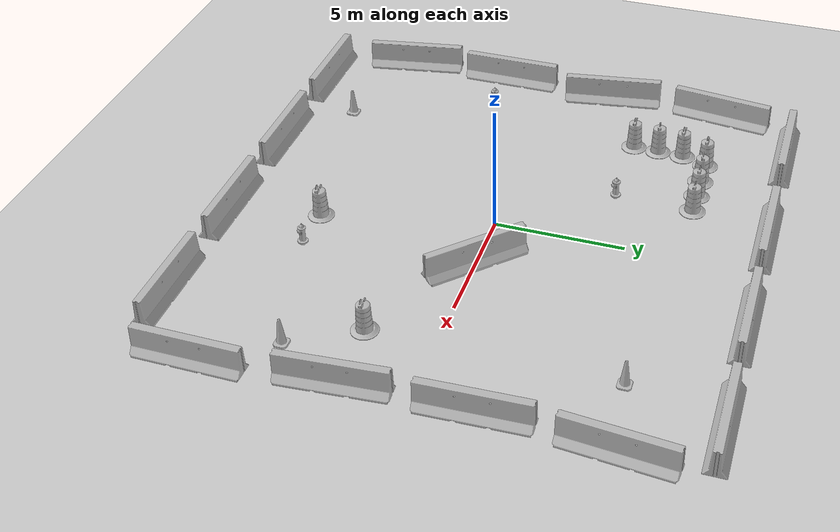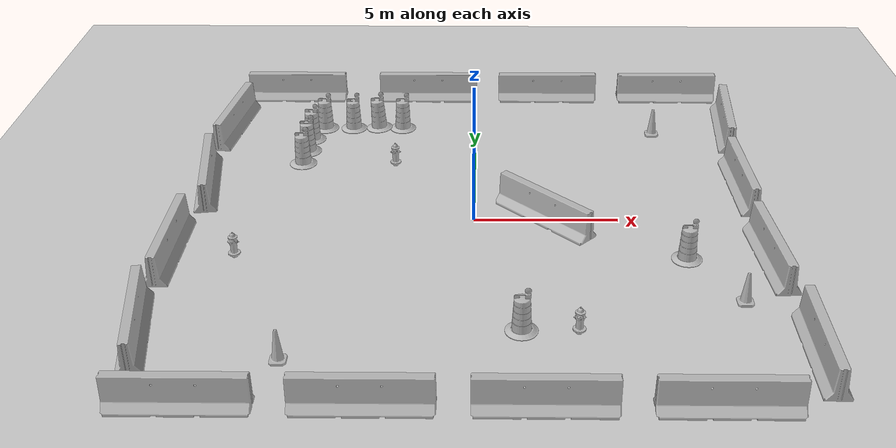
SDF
<sdf version="1.6">
 <world name="default">
  <light name="sun" type="directional">
   <pose>0 0 10 0 -0 0</pose>
   <diffuse>0.8 0.8 0.8 1</diffuse>
   <specular>0.2 0.2 0.2 1</specular>
   <attenuation>
    <range>1000</range>
    <constant>0.9</constant>
    <linear>0.01</linear>
    <quadratic>0.001</quadratic>
   </attenuation>
   <direction>-0.5 0.1 -0.9</direction>
  </light>
  <model name="ground_plane">
   <static>1</static>
   <link name="link">
    <collision name="collision">
     <geometry><plane><normal>0 0 1</normal><size>100 100</size></plane></geometry>
     <surface><friction><ode><mu>100</mu><mu2>50</mu2></ode></friction></surface>
    </collision>
    <visual name="visual">
     <cast_shadows>0</cast_shadows>
     <geometry><plane><normal>0 0 1</normal><size>100 100</size></plane></geometry>
     <material>
      <script><uri>file://media/materials/scripts/gazebo.material</uri><name>Gazebo/Grey</name></script>
     </material>
    </visual>
    <velocity_decay><linear>0</linear><angular>0</angular></velocity_decay>
   </link>
  </model>
  <physics name="default_physics" default="0" type="ode">
   <max_step_size>0.01</max_step_size>
   <real_time_factor>1</real_time_factor>
   <real_time_update_rate>100</real_time_update_rate>
  </physics>
  <scene><ambient>1 1 1 1</ambient><background>1 1 1 1</background><shadows>0</shadows></scene>
  <model name="jersey_barrier">
   <static>1</static>
   <link name="link">
    <visual name="visual">
     <geometry><mesh><uri>model://jersey_barrier/meshes/jersey_barrier.dae</uri></mesh></geometry>
    </visual>
    <collision name="upright">
     <pose>0 0 0.5715 0 -0 0</pose>
     <geometry><box><size>4.06542 0.3063 1.143</size></box></geometry>
    </collision>
    <collision name="base">
     <pose>0 0 0.032258 0 -0 0</pose>
     <geometry><box><size>4.06542 0.8107 0.064516</size></box></geometry>
    </collision>
    <collision name="base2">
     <pose>0 0 0.1 0 -0 0</pose>
     <geometry><box><size>4.06542 0.65 0.1</size></box></geometry>
    </collision>
    <collision name="base3">
     <pose>0 0 0.2 0 -0 0</pose>
     <geometry><box><size>4.06542 0.5 0.1</size></box></geometry>
    </collision>
    <collision name="left-angle">
     <pose>0 -0.224 0.2401 0.9 -0 0</pose>
     <geometry><box><size>4.06542 0.5 0.064516</size></box></geometry>
    </collision>
    <collision name="right-angle">
     <pose>0 0.224 0.2401 -0.9 0 0</pose>
     <geometry><box><size>4.06542 0.5 0.064516</size></box></geometry>
    </collision>
    <velocity_decay><linear>0</linear><angular>0</angular></velocity_decay>
   </link>
   <pose>-8 -10 0 0 -0 0</pose>
  </model>
  <model name="jersey_barrier_0">
   <static>1</static>
   <link name="link">
    <visual name="visual">
     <geometry><mesh><uri>model://jersey_barrier/meshes/jersey_barrier.dae</uri></mesh></geometry>
    </visual>
    <collision name="upright">
     <pose>0 0 0.5715 0 -0 0</pose>
     <geometry><box><size>4.06542 0.3063 1.143</size></box></geometry>
    </collision>
    <collision name="base">
     <pose>0 0 0.032258 0 -0 0</pose>
     <geometry><box><size>4.06542 0.8107 0.064516</size></box></geometry>
    </collision>
    <collision name="base2">
     <pose>0 0 0.1 0 -0 0</pose>
     <geometry><box><size>4.06542 0.65 0.1</size></box></geometry>
    </collision>
    <collision name="base3">
     <pose>0 0 0.2 0 -0 0</pose>
     <geometry><box><size>4.06542 0.5 0.1</size></box></geometry>
    </collision>
    <collision name="left-angle">
     <pose>0 -0.224 0.2401 0.9 -0 0</pose>
     <geometry><box><size>4.06542 0.5 0.064516</size></box></geometry>
    </collision>
    <collision name="right-angle">
     <pose>0 0.224 0.2401 -0.9 0 0</pose>
     <geometry><box><size>4.06542 0.5 0.064516</size></box></geometry>
    </collision>
    <velocity_decay><linear>0</linear><angular>0</angular></velocity_decay>
   </link>
   <pose>-3 -10 0 0 -0 0</pose>
  </model>
  <model name="jersey_barrier_1">
   <static>1</static>
   <link name="link">
    <visual name="visual">
     <geometry><mesh><uri>model://jersey_barrier/meshes/jersey_barrier.dae</uri></mesh></geometry>
    </visual>
    <collision name="upright">
     <pose>0 0 0.5715 0 -0 0</pose>
     <geometry><box><size>4.06542 0.3063 1.143</size></box></geometry>
    </collision>
    <collision name="base">
     <pose>0 0 0.032258 0 -0 0</pose>
     <geometry><box><size>4.06542 0.8107 0.064516</size></box></geometry>
    </collision>
    <collision name="base2">
     <pose>0 0 0.1 0 -0 0</pose>
     <geometry><box><size>4.06542 0.65 0.1</size></box></geometry>
    </collision>
    <collision name="base3">
     <pose>0 0 0.2 0 -0 0</pose>
     <geometry><box><size>4.06542 0.5 0.1</size></box></geometry>
    </collision>
    <collision name="left-angle">
     <pose>0 -0.224 0.2401 0.9 -0 0</pose>
     <geometry><box><size>4.06542 0.5 0.064516</size></box></geometry>
    </collision>
    <collision name="right-angle">
     <pose>0 0.224 0.2401 -0.9 0 0</pose>
     <geometry><box><size>4.06542 0.5 0.064516</size></box></geometry>
    </collision>
    <velocity_decay><linear>0</linear><angular>0</angular></velocity_decay>
   </link>
   <pose>2 -10 0 0 -0 0</pose>
  </model>
  <model name="jersey_barrier_2">
   <static>1</static>
   <link name="link">
    <visual name="visual">
     <geometry><mesh><uri>model://jersey_barrier/meshes/jersey_barrier.dae</uri></mesh></geometry>
    </visual>
    <collision name="upright">
     <pose>0 0 0.5715 0 -0 0</pose>
     <geometry><box><size>4.06542 0.3063 1.143</size></box></geometry>
    </collision>
    <collision name="base">
     <pose>0 0 0.032258 0 -0 0</pose>
     <geometry><box><size>4.06542 0.8107 0.064516</size></box></geometry>
    </collision>
    <collision name="base2">
     <pose>0 0 0.1 0 -0 0</pose>
     <geometry><box><size>4.06542 0.65 0.1</size></box></geometry>
    </collision>
    <collision name="base3">
     <pose>0 0 0.2 0 -0 0</pose>
     <geometry><box><size>4.06542 0.5 0.1</size></box></geometry>
    </collision>
    <collision name="left-angle">
     <pose>0 -0.224 0.2401 0.9 -0 0</pose>
     <geometry><box><size>4.06542 0.5 0.064516</size></box></geometry>
    </collision>
    <collision name="right-angle">
     <pose>0 0.224 0.2401 -0.9 0 0</pose>
     <geometry><box><size>4.06542 0.5 0.064516</size></box></geometry>
    </collision>
    <velocity_decay><linear>0</linear><angular>0</angular></velocity_decay>
   </link>
   <pose>7 -10 0 0 -0 0</pose>
  </model>
  <model name="jersey_barrier_3">
   <static>1</static>
   <link name="link">
    <visual name="visual">
     <geometry><mesh><uri>model://jersey_barrier/meshes/jersey_barrier.dae</uri></mesh></geometry>
    </visual>
    <collision name="upright">
     <pose>0 0 0.5715 0 -0 0</pose>
     <geometry><box><size>4.06542 0.3063 1.143</size></box></geometry>
    </collision>
    <collision name="base">
     <pose>0 0 0.032258 0 -0 0</pose>
     <geometry><box><size>4.06542 0.8107 0.064516</size></box></geometry>
    </collision>
    <collision name="base2">
     <pose>0 0 0.1 0 -0 0</pose>
     <geometry><box><size>4.06542 0.65 0.1</size></box></geometry>
    </collision>
    <collision name="base3">
     <pose>0 0 0.2 0 -0 0</pose>
     <geometry><box><size>4.06542 0.5 0.1</size></box></geometry>
    </collision>
    <collision name="left-angle">
     <pose>0 -0.224 0.2401 0.9 -0 0</pose>
     <geometry><box><size>4.06542 0.5 0.064516</size></box></geometry>
    </collision>
    <collision name="right-angle">
     <pose>0 0.224 0.2401 -0.9 0 0</pose>
     <geometry><box><size>4.06542 0.5 0.064516</size></box></geometry>
    </collision>
    <velocity_decay><linear>0</linear><angular>0</angular></velocity_decay>
   </link>
   <pose>-7.50675 10 0 0 -0 0</pose>
  </model>
  <model name="jersey_barrier_4">
   <static>1</static>
   <link name="link">
    <visual name="visual">
     <geometry><mesh><uri>model://jersey_barrier/meshes/jersey_barrier.dae</uri></mesh></geometry>
    </visual>
    <collision name="upright">
     <pose>0 0 0.5715 0 -0 0</pose>
     <geometry><box><size>4.06542 0.3063 1.143</size></box></geometry>
    </collision>
    <collision name="base">
     <pose>0 0 0.032258 0 -0 0</pose>
     <geometry><box><size>4.06542 0.8107 0.064516</size></box></geometry>
    </collision>
    <collision name="base2">
     <pose>0 0 0.1 0 -0 0</pose>
     <geometry><box><size>4.06542 0.65 0.1</size></box></geometry>
    </collision>
    <collision name="base3">
     <pose>0 0 0.2 0 -0 0</pose>
     <geometry><box><size>4.06542 0.5 0.1</size></box></geometry>
    </collision>
    <collision name="left-angle">
     <pose>0 -0.224 0.2401 0.9 -0 0</pose>
     <geometry><box><size>4.06542 0.5 0.064516</size></box></geometry>
    </collision>
    <collision name="right-angle">
     <pose>0 0.224 0.2401 -0.9 0 0</pose>
     <geometry><box><size>4.06542 0.5 0.064516</size></box></geometry>
    </collision>
    <velocity_decay><linear>0</linear><angular>0</angular></velocity_decay>
   </link>
   <pose>-2 10 0 0 -0 0</pose>
  </model>
  <model name="jersey_barrier_5">
   <static>1</static>
   <link name="link">
    <visual name="visual">
     <geometry><mesh><uri>model://jersey_barrier/meshes/jersey_barrier.dae</uri></mesh></geometry>
    </visual>
    <collision name="upright">
     <pose>0 0 0.5715 0 -0 0</pose>
     <geometry><box><size>4.06542 0.3063 1.143</size></box></geometry>
    </collision>
    <collision name="base">
     <pose>0 0 0.032258 0 -0 0</pose>
     <geometry><box><size>4.06542 0.8107 0.064516</size></box></geometry>
    </collision>
    <collision name="base2">
     <pose>0 0 0.1 0 -0 0</pose>
     <geometry><box><size>4.06542 0.65 0.1</size></box></geometry>
    </collision>
    <collision name="base3">
     <pose>0 0 0.2 0 -0 0</pose>
     <geometry><box><size>4.06542 0.5 0.1</size></box></geometry>
    </collision>
    <collision name="left-angle">
     <pose>0 -0.224 0.2401 0.9 -0 0</pose>
     <geometry><box><size>4.06542 0.5 0.064516</size></box></geometry>
    </collision>
    <collision name="right-angle">
     <pose>0 0.224 0.2401 -0.9 0 0</pose>
     <geometry><box><size>4.06542 0.5 0.064516</size></box></geometry>
    </collision>
    <velocity_decay><linear>0</linear><angular>0</angular></velocity_decay>
   </link>
   <pose>3 10 0 0 -0 0</pose>
  </model>
  <model name="jersey_barrier_6">
   <static>1</static>
   <link name="link">
    <visual name="visual">
     <geometry><mesh><uri>model://jersey_barrier/meshes/jersey_barrier.dae</uri></mesh></geometry>
    </visual>
    <collision name="upright">
     <pose>0 0 0.5715 0 -0 0</pose>
     <geometry><box><size>4.06542 0.3063 1.143</size></box></geometry>
    </collision>
    <collision name="base">
     <pose>0 0 0.032258 0 -0 0</pose>
     <geometry><box><size>4.06542 0.8107 0.064516</size></box></geometry>
    </collision>
    <collision name="base2">
     <pose>0 0 0.1 0 -0 0</pose>
     <geometry><box><size>4.06542 0.65 0.1</size></box></geometry>
    </collision>
    <collision name="base3">
     <pose>0 0 0.2 0 -0 0</pose>
     <geometry><box><size>4.06542 0.5 0.1</size></box></geometry>
    </collision>
    <collision name="left-angle">
     <pose>0 -0.224 0.2401 0.9 -0 0</pose>
     <geometry><box><size>4.06542 0.5 0.064516</size></box></geometry>
    </collision>
    <collision name="right-angle">
     <pose>0 0.224 0.2401 -0.9 0 0</pose>
     <geometry><box><size>4.06542 0.5 0.064516</size></box></geometry>
    </collision>
    <velocity_decay><linear>0</linear><angular>0</angular></velocity_decay>
   </link>
   <pose>8 10 0 0 -0 0</pose>
  </model>
  <model name="jersey_barrier_7">
   <static>1</static>
   <link name="link">
    <visual name="visual">
     <geometry><mesh><uri>model://jersey_barrier/meshes/jersey_barrier.dae</uri></mesh></geometry>
    </visual>
    <collision name="upright">
     <pose>0 0 0.5715 0 -0 0</pose>
     <geometry><box><size>4.06542 0.3063 1.143</size></box></geometry>
    </collision>
    <collision name="base">
     <pose>0 0 0.032258 0 -0 0</pose>
     <geometry><box><size>4.06542 0.8107 0.064516</size></box></geometry>
    </collision>
    <collision name="base2">
     <pose>0 0 0.1 0 -0 0</pose>
     <geometry><box><size>4.06542 0.65 0.1</size></box></geometry>
    </collision>
    <collision name="base3">
     <pose>0 0 0.2 0 -0 0</pose>
     <geometry><box><size>4.06542 0.5 0.1</size></box></geometry>
    </collision>
    <collision name="left-angle">
     <pose>0 -0.224 0.2401 0.9 -0 0</pose>
     <geometry><box><size>4.06542 0.5 0.064516</size></box></geometry>
    </collision>
    <collision name="right-angle">
     <pose>0 0.224 0.2401 -0.9 0 0</pose>
     <geometry><box><size>4.06542 0.5 0.064516</size></box></geometry>
    </collision>
    <velocity_decay><linear>0</linear><angular>0</angular></velocity_decay>
   </link>
   <pose>9.74902 -2.57759 0 0 -0 1.64</pose>
  </model>
  <model name="jersey_barrier_8">
   <static>1</static>
   <link name="link">
    <visual name="visual">
     <geometry><mesh><uri>model://jersey_barrier/meshes/jersey_barrier.dae</uri></mesh></geometry>
    </visual>
    <collision name="upright">
     <pose>0 0 0.5715 0 -0 0</pose>
     <geometry><box><size>4.06542 0.3063 1.143</size></box></geometry>
    </collision>
    <collision name="base">
     <pose>0 0 0.032258 0 -0 0</pose>
     <geometry><box><size>4.06542 0.8107 0.064516</size></box></geometry>
    </collision>
    <collision name="base2">
     <pose>0 0 0.1 0 -0 0</pose>
     <geometry><box><size>4.06542 0.65 0.1</size></box></geometry>
    </collision>
    <collision name="base3">
     <pose>0 0 0.2 0 -0 0</pose>
     <geometry><box><size>4.06542 0.5 0.1</size></box></geometry>
    </collision>
    <collision name="left-angle">
     <pose>0 -0.224 0.2401 0.9 -0 0</pose>
     <geometry><box><size>4.06542 0.5 0.064516</size></box></geometry>
    </collision>
    <collision name="right-angle">
     <pose>0 0.224 0.2401 -0.9 0 0</pose>
     <geometry><box><size>4.06542 0.5 0.064516</size></box></geometry>
    </collision>
    <velocity_decay><linear>0</linear><angular>0</angular></velocity_decay>
   </link>
   <pose>9.70141 2.24369 0 0 -0 1.6</pose>
  </model>
  <model name="jersey_barrier_9">
   <static>1</static>
   <link name="link">
    <visual name="visual">
     <geometry><mesh><uri>model://jersey_barrier/meshes/jersey_barrier.dae</uri></mesh></geometry>
    </visual>
    <collision name="upright">
     <pose>0 0 0.5715 0 -0 0</pose>
     <geometry><box><size>4.06542 0.3063 1.143</size></box></geometry>
    </collision>
    <collision name="base">
     <pose>0 0 0.032258 0 -0 0</pose>
     <geometry><box><size>4.06542 0.8107 0.064516</size></box></geometry>
    </collision>
    <collision name="base2">
     <pose>0 0 0.1 0 -0 0</pose>
     <geometry><box><size>4.06542 0.65 0.1</size></box></geometry>
    </collision>
    <collision name="base3">
     <pose>0 0 0.2 0 -0 0</pose>
     <geometry><box><size>4.06542 0.5 0.1</size></box></geometry>
    </collision>
    <collision name="left-angle">
     <pose>0 -0.224 0.2401 0.9 -0 0</pose>
     <geometry><box><size>4.06542 0.5 0.064516</size></box></geometry>
    </collision>
    <collision name="right-angle">
     <pose>0 0.224 0.2401 -0.9 0 0</pose>
     <geometry><box><size>4.06542 0.5 0.064516</size></box></geometry>
    </collision>
    <velocity_decay><linear>0</linear><angular>0</angular></velocity_decay>
   </link>
   <pose>-10.0607 -6.69856 0 0 0 -1.4</pose>
  </model>
  <model name="jersey_barrier_10">
   <static>1</static>
   <link name="link">
    <visual name="visual">
     <geometry><mesh><uri>model://jersey_barrier/meshes/jersey_barrier.dae</uri></mesh></geometry>
    </visual>
    <collision name="upright">
     <pose>0 0 0.5715 0 -0 0</pose>
     <geometry><box><size>4.06542 0.3063 1.143</size></box></geometry>
    </collision>
    <collision name="base">
     <pose>0 0 0.032258 0 -0 0</pose>
     <geometry><box><size>4.06542 0.8107 0.064516</size></box></geometry>
    </collision>
    <collision name="base2">
     <pose>0 0 0.1 0 -0 0</pose>
     <geometry><box><size>4.06542 0.65 0.1</size></box></geometry>
    </collision>
    <collision name="base3">
     <pose>0 0 0.2 0 -0 0</pose>
     <geometry><box><size>4.06542 0.5 0.1</size></box></geometry>
    </collision>
    <collision name="left-angle">
     <pose>0 -0.224 0.2401 0.9 -0 0</pose>
     <geometry><box><size>4.06542 0.5 0.064516</size></box></geometry>
    </collision>
    <collision name="right-angle">
     <pose>0 0.224 0.2401 -0.9 0 0</pose>
     <geometry><box><size>4.06542 0.5 0.064516</size></box></geometry>
    </collision>
    <velocity_decay><linear>0</linear><angular>0</angular></velocity_decay>
   </link>
   <pose>-10.0774 -2.27159 0 0 -0 1.56</pose>
  </model>
  <model name="jersey_barrier_11">
   <static>1</static>
   <link name="link">
    <visual name="visual">
     <geometry><mesh><uri>model://jersey_barrier/meshes/jersey_barrier.dae</uri></mesh></geometry>
    </visual>
    <collision name="upright">
     <pose>0 0 0.5715 0 -0 0</pose>
     <geometry><box><size>4.06542 0.3063 1.143</size></box></geometry>
    </collision>
    <collision name="base">
     <pose>0 0 0.032258 0 -0 0</pose>
     <geometry><box><size>4.06542 0.8107 0.064516</size></box></geometry>
    </collision>
    <collision name="base2">
     <pose>0 0 0.1 0 -0 0</pose>
     <geometry><box><size>4.06542 0.65 0.1</size></box></geometry>
    </collision>
    <collision name="base3">
     <pose>0 0 0.2 0 -0 0</pose>
     <geometry><box><size>4.06542 0.5 0.1</size></box></geometry>
    </collision>
    <collision name="left-angle">
     <pose>0 -0.224 0.2401 0.9 -0 0</pose>
     <geometry><box><size>4.06542 0.5 0.064516</size></box></geometry>
    </collision>
    <collision name="right-angle">
     <pose>0 0.224 0.2401 -0.9 0 0</pose>
     <geometry><box><size>4.06542 0.5 0.064516</size></box></geometry>
    </collision>
    <velocity_decay><linear>0</linear><angular>0</angular></velocity_decay>
   </link>
   <pose>-9.77013 2.34791 0 0 -0 1.72</pose>
  </model>
  <model name="jersey_barrier_12">
   <static>1</static>
   <link name="link">
    <visual name="visual">
     <geometry><mesh><uri>model://jersey_barrier/meshes/jersey_barrier.dae</uri></mesh></geometry>
    </visual>
    <collision name="upright">
     <pose>0 0 0.5715 0 -0 0</pose>
     <geometry><box><size>4.06542 0.3063 1.143</size></box></geometry>
    </collision>
    <collision name="base">
     <pose>0 0 0.032258 0 -0 0</pose>
     <geometry><box><size>4.06542 0.8107 0.064516</size></box></geometry>
    </collision>
    <collision name="base2">
     <pose>0 0 0.1 0 -0 0</pose>
     <geometry><box><size>4.06542 0.65 0.1</size></box></geometry>
    </collision>
    <collision name="base3">
     <pose>0 0 0.2 0 -0 0</pose>
     <geometry><box><size>4.06542 0.5 0.1</size></box></geometry>
    </collision>
    <collision name="left-angle">
     <pose>0 -0.224 0.2401 0.9 -0 0</pose>
     <geometry><box><size>4.06542 0.5 0.064516</size></box></geometry>
    </collision>
    <collision name="right-angle">
     <pose>0 0.224 0.2401 -0.9 0 0</pose>
     <geometry><box><size>4.06542 0.5 0.064516</size></box></geometry>
    </collision>
    <velocity_decay><linear>0</linear><angular>0</angular></velocity_decay>
   </link>
   <pose>10.0879 -7.62159 0 0 -0 1.56</pose>
  </model>
  <model name="jersey_barrier_13">
   <static>1</static>
   <link name="link">
    <visual name="visual">
     <geometry><mesh><uri>model://jersey_barrier/meshes/jersey_barrier.dae</uri></mesh></geometry>
    </visual>
    <collision name="upright">
     <pose>0 0 0.5715 0 -0 0</pose>
     <geometry><box><size>4.06542 0.3063 1.143</size></box></geometry>
    </collision>
    <collision name="base">
     <pose>0 0 0.032258 0 -0 0</pose>
     <geometry><box><size>4.06542 0.8107 0.064516</size></box></geometry>
    </collision>
    <collision name="base2">
     <pose>0 0 0.1 0 -0 0</pose>
     <geometry><box><size>4.06542 0.65 0.1</size></box></geometry>
    </collision>
    <collision name="base3">
     <pose>0 0 0.2 0 -0 0</pose>
     <geometry><box><size>4.06542 0.5 0.1</size></box></geometry>
    </collision>
    <collision name="left-angle">
     <pose>0 -0.224 0.2401 0.9 -0 0</pose>
     <geometry><box><size>4.06542 0.5 0.064516</size></box></geometry>
    </collision>
    <collision name="right-angle">
     <pose>0 0.224 0.2401 -0.9 0 0</pose>
     <geometry><box><size>4.06542 0.5 0.064516</size></box></geometry>
    </collision>
    <velocity_decay><linear>0</linear><angular>0</angular></velocity_decay>
   </link>
   <pose>10 7 0 0 -0 1.48</pose>
  </model>
  <model name="jersey_barrier_14">
   <static>1</static>
   <link name="link">
    <visual name="visual">
     <geometry><mesh><uri>model://jersey_barrier/meshes/jersey_barrier.dae</uri></mesh></geometry>
    </visual>
    <collision name="upright">
     <pose>0 0 0.5715 0 -0 0</pose>
     <geometry><box><size>4.06542 0.3063 1.143</size></box></geometry>
    </collision>
    <collision name="base">
     <pose>0 0 0.032258 0 -0 0</pose>
     <geometry><box><size>4.06542 0.8107 0.064516</size></box></geometry>
    </collision>
    <collision name="base2">
     <pose>0 0 0.1 0 -0 0</pose>
     <geometry><box><size>4.06542 0.65 0.1</size></box></geometry>
    </collision>
    <collision name="base3">
     <pose>0 0 0.2 0 -0 0</pose>
     <geometry><box><size>4.06542 0.5 0.1</size></box></geometry>
    </collision>
    <collision name="left-angle">
     <pose>0 -0.224 0.2401 0.9 -0 0</pose>
     <geometry><box><size>4.06542 0.5 0.064516</size></box></geometry>
    </collision>
    <collision name="right-angle">
     <pose>0 0.224 0.2401 -0.9 0 0</pose>
     <geometry><box><size>4.06542 0.5 0.064516</size></box></geometry>
    </collision>
    <velocity_decay><linear>0</linear><angular>0</angular></velocity_decay>
   </link>
   <pose>-9.64482 7.05946 0 0 -0 1.44</pose>
  </model>
  <model name="fire_hydrant">
   <static>1</static>
   <link name="link">
    <collision name="collision">
     <geometry><mesh><uri>model://fire_hydrant/meshes/fire_hydrant.dae</uri></mesh></geometry>
    </collision>
    <visual name="visual">
     <geometry><mesh><uri>model://fire_hydrant/meshes/fire_hydrant.dae</uri></mesh></geometry>
    </visual>
    <velocity_decay><linear>0</linear><angular>0</angular></velocity_decay>
   </link>
   <pose>3.18024 -6.51118 0 0 -0 0</pose>
  </model>
  <model name="fire_hydrant_0">
   <static>1</static>
   <link name="link">
    <collision name="collision">
     <geometry><mesh><uri>model://fire_hydrant/meshes/fire_hydrant.dae</uri></mesh></geometry>
    </collision>
    <visual name="visual">
     <geometry><mesh><uri>model://fire_hydrant/meshes/fire_hydrant.dae</uri></mesh></geometry>
    </visual>
    <velocity_decay><linear>0</linear><angular>0</angular></velocity_decay>
   </link>
   <pose>-3 4 0 0 -0 0</pose>
  </model>
  <model name="fire_hydrant_1">
   <static>1</static>
   <link name="link">
    <collision name="collision">
     <geometry><mesh><uri>model://fire_hydrant/meshes/fire_hydrant.dae</uri></mesh></geometry>
    </collision>
    <visual name="visual">
     <geometry><mesh><uri>model://fire_hydrant/meshes/fire_hydrant.dae</uri></mesh></geometry>
    </visual>
    <velocity_decay><linear>0</linear><angular>0</angular></velocity_decay>
   </link>
   <pose>-7.90686 -2.41363 0 0 -0 0</pose>
  </model>
  <model name="jersey_barrier_15">
   <static>1</static>
   <link name="link">
    <visual name="visual">
     <geometry><mesh><uri>model://jersey_barrier/meshes/jersey_barrier.dae</uri></mesh></geometry>
    </visual>
    <collision name="upright">
     <pose>0 0 0.5715 0 -0 0</pose>
     <geometry><box><size>4.06542 0.3063 1.143</size></box></geometry>
    </collision>
    <collision name="base">
     <pose>0 0 0.032258 0 -0 0</pose>
     <geometry><box><size>4.06542 0.8107 0.064516</size></box></geometry>
    </collision>
    <collision name="base2">
     <pose>0 0 0.1 0 -0 0</pose>
     <geometry><box><size>4.06542 0.65 0.1</size></box></geometry>
    </collision>
    <collision name="base3">
     <pose>0 0 0.2 0 -0 0</pose>
     <geometry><box><size>4.06542 0.5 0.1</size></box></geometry>
    </collision>
    <collision name="left-angle">
     <pose>0 -0.224 0.2401 0.9 -0 0</pose>
     <geometry><box><size>4.06542 0.5 0.064516</size></box></geometry>
    </collision>
    <collision name="right-angle">
     <pose>0 0.224 0.2401 -0.9 0 0</pose>
     <geometry><box><size>4.06542 0.5 0.064516</size></box></geometry>
    </collision>
    <velocity_decay><linear>0</linear><angular>0</angular></velocity_decay>
   </link>
   <pose>2.45495 0 0 0 -0 2.36</pose>
  </model>
  <model name="Construction Cone">
   <link name="link">
    <collision name="collision">
     <geometry>
      <mesh><scale>10 10 10</scale><uri>model://construction_cone/meshes/construction_cone.dae</uri></mesh>
     </geometry>
    </collision>
    <visual name="visual">
     <geometry>
      <mesh><scale>10 10 10</scale><uri>model://construction_cone/meshes/construction_cone.dae</uri></mesh>
     </geometry>
    </visual>
    <velocity_decay><linear>0</linear><angular>0</angular></velocity_decay>
    <inertial>
     <inertia><ixx>1</ixx><ixy>0</ixy><ixz>0</ixz><iyy>1</iyy><iyz>0</iyz><izz>1</izz></inertia>
     <mass>1</mass>
    </inertial>
   </link>
   <pose>-5.59121 -8 0.050011 7.1e-05 -6.7e-05 0</pose>
   <static>0</static>
  </model>
  <model name="Construction Barrel">
   <link name="link">
    <inertial>
     <pose>0 0 0.4 0 -0 0</pose>
     <mass>500</mass>
     <inertia><ixx>51.2096</ixx><iyy>51.2096</iyy><izz>25</izz><ixy>0</ixy><ixz>0</ixz><iyz>0</iyz></inertia>
    </inertial>
    <collision name="collision">
     <geometry><mesh><uri>model://construction_barrel/meshes/construction_barrel.dae</uri></mesh></geometry>
    </collision>
    <visual name="visual">
     <geometry><mesh><uri>model://construction_barrel/meshes/construction_barrel.dae</uri></mesh></geometry>
    </visual>
    <velocity_decay><linear>0</linear><angular>0</angular></velocity_decay>
   </link>
   <pose>7.00006 -2.54635 0.049893 -0.00021 -0.000393 0.000394</pose>
   <static>0</static>
  </model>
  <model name="Construction Cone_0">
   <link name="link">
    <collision name="collision">
     <geometry>
      <mesh><scale>10 10 10</scale><uri>model://construction_cone/meshes/construction_cone.dae</uri></mesh>
     </geometry>
    </collision>
    <visual name="visual">
     <geometry>
      <mesh><scale>10 10 10</scale><uri>model://construction_cone/meshes/construction_cone.dae</uri></mesh>
     </geometry>
    </visual>
    <velocity_decay><linear>0</linear><angular>0</angular></velocity_decay>
    <inertial>
     <inertia><ixx>1</ixx><ixy>0</ixy><ixz>0</ixz><iyy>1</iyy><iyz>0</iyz><izz>1</izz></inertia>
     <mass>1</mass>
    </inertial>
   </link>
   <pose>6.99685 6.55732 0.049102 3e-06 -1e-05 -0.007012</pose>
   <static>0</static>
  </model>
  <model name="Construction Barrel_0">
   <link name="link">
    <inertial>
     <pose>0 0 0.4 0 -0 0</pose>
     <mass>500</mass>
     <inertia><ixx>51.2096</ixx><iyy>51.2096</iyy><izz>25</izz><ixy>0</ixy><ixz>0</ixz><iyz>0</iyz></inertia>
    </inertial>
    <collision name="collision">
     <geometry><mesh><uri>model://construction_barrel/meshes/construction_barrel.dae</uri></mesh></geometry>
    </collision>
    <visual name="visual">
     <geometry><mesh><uri>model://construction_barrel/meshes/construction_barrel.dae</uri></mesh></geometry>
    </visual>
    <velocity_decay><linear>0</linear><angular>0</angular></velocity_decay>
   </link>
   <pose>1.45178 -6.51128 0.049891 0.000452 -1.4e-05 3.1e-05</pose>
   <static>0</static>
  </model>
  <model name="Construction Barrel_1">
   <link name="link">
    <inertial>
     <pose>0 0 0.4 0 -0 0</pose>
     <mass>500</mass>
     <inertia><ixx>51.2096</ixx><iyy>51.2096</iyy><izz>25</izz><ixy>0</ixy><ixz>0</ixz><iyz>0</iyz></inertia>
    </inertial>
    <collision name="collision">
     <geometry><mesh><uri>model://construction_barrel/meshes/construction_barrel.dae</uri></mesh></geometry>
    </collision>
    <visual name="visual">
     <geometry><mesh><uri>model://construction_barrel/meshes/construction_barrel.dae</uri></mesh></geometry>
    </visual>
    <velocity_decay><linear>0</linear><angular>0</angular></velocity_decay>
   </link>
   <pose>-6.50481 3.98261 0.049876 -0.000126 -0.000472 -0.009611</pose>
   <static>0</static>
  </model>
  <model name="Construction Barrel_2">
   <link name="link">
    <inertial>
     <pose>0 0 0.4 0 -0 0</pose>
     <mass>500</mass>
     <inertia><ixx>51.2096</ixx><iyy>51.2096</iyy><izz>25</izz><ixy>0</ixy><ixz>0</ixz><iyz>0</iyz></inertia>
    </inertial>
    <collision name="collision">
     <geometry><mesh><uri>model://construction_barrel/meshes/construction_barrel.dae</uri></mesh></geometry>
    </collision>
    <visual name="visual">
     <geometry><mesh><uri>model://construction_barrel/meshes/construction_barrel.dae</uri></mesh></geometry>
    </visual>
    <velocity_decay><linear>0</linear><angular>0</angular></velocity_decay>
   </link>
   <pose>-6.45065 4.99639 0.049882 0.000474 -7e-06 0.064976</pose>
   <static>0</static>
  </model>
  <model name="Construction Barrel_3">
   <link name="link">
    <inertial>
     <pose>0 0 0.4 0 -0 0</pose>
     <mass>500</mass>
     <inertia><ixx>51.2096</ixx><iyy>51.2096</iyy><izz>25</izz><ixy>0</ixy><ixz>0</ixz><iyz>0</iyz></inertia>
    </inertial>
    <collision name="collision">
     <geometry><mesh><uri>model://construction_barrel/meshes/construction_barrel.dae</uri></mesh></geometry>
    </collision>
    <visual name="visual">
     <geometry><mesh><uri>model://construction_barrel/meshes/construction_barrel.dae</uri></mesh></geometry>
    </visual>
    <velocity_decay><linear>0</linear><angular>0</angular></velocity_decay>
   </link>
   <pose>-6.40173 6.0111 0.049894 0.000421 0.0001 -0.120723</pose>
   <static>0</static>
  </model>
  <model name="Construction Barrel_4">
   <link name="link">
    <inertial>
     <pose>0 0 0.4 0 -0 0</pose>
     <mass>500</mass>
     <inertia><ixx>51.2096</ixx><iyy>51.2096</iyy><izz>25</izz><ixy>0</ixy><ixz>0</ixz><iyz>0</iyz></inertia>
    </inertial>
    <collision name="collision">
     <geometry><mesh><uri>model://construction_barrel/meshes/construction_barrel.dae</uri></mesh></geometry>
    </collision>
    <visual name="visual">
     <geometry><mesh><uri>model://construction_barrel/meshes/construction_barrel.dae</uri></mesh></geometry>
    </visual>
    <velocity_decay><linear>0</linear><angular>0</angular></velocity_decay>
   </link>
   <pose>-6.00633 7.0088 0.049874 -0.000129 -0.000477 -0.049567</pose>
   <static>0</static>
  </model>
  <model name="Construction Barrel_5">
   <link name="link">
    <inertial>
     <pose>0 0 0.4 0 -0 0</pose>
     <mass>500</mass>
     <inertia><ixx>51.2096</ixx><iyy>51.2096</iyy><izz>25</izz><ixy>0</ixy><ixz>0</ixz><iyz>0</iyz></inertia>
    </inertial>
    <collision name="collision">
     <geometry><mesh><uri>model://construction_barrel/meshes/construction_barrel.dae</uri></mesh></geometry>
    </collision>
    <visual name="visual">
     <geometry><mesh><uri>model://construction_barrel/meshes/construction_barrel.dae</uri></mesh></geometry>
    </visual>
    <velocity_decay><linear>0</linear><angular>0</angular></velocity_decay>
   </link>
   <pose>-4.87565 7.00814 0.049874 0.000494 -0 0.146159</pose>
   <static>0</static>
  </model>
  <model name="Construction Barrel_6">
   <link name="link">
    <inertial>
     <pose>0 0 0.4 0 -0 0</pose>
     <mass>500</mass>
     <inertia><ixx>51.2096</ixx><iyy>51.2096</iyy><izz>25</izz><ixy>0</ixy><ixz>0</ixz><iyz>0</iyz></inertia>
    </inertial>
    <collision name="collision">
     <geometry><mesh><uri>model://construction_barrel/meshes/construction_barrel.dae</uri></mesh></geometry>
    </collision>
    <visual name="visual">
     <geometry><mesh><uri>model://construction_barrel/meshes/construction_barrel.dae</uri></mesh></geometry>
    </visual>
    <velocity_decay><linear>0</linear><angular>0</angular></velocity_decay>
   </link>
   <pose>-3.85495 7.03484 0.075037 -0.006491 -0.049015 0.031185</pose>
   <static>0</static>
  </model>
  <model name="Construction Barrel_7">
   <link name="link">
    <inertial>
     <pose>0 0 0.4 0 -0 0</pose>
     <mass>500</mass>
     <inertia><ixx>51.2096</ixx><iyy>51.2096</iyy><izz>25</izz><ixy>0</ixy><ixz>0</ixz><iyz>0</iyz></inertia>
    </inertial>
    <collision name="collision">
     <geometry><mesh><uri>model://construction_barrel/meshes/construction_barrel.dae</uri></mesh></geometry>
    </collision>
    <visual name="visual">
     <geometry><mesh><uri>model://construction_barrel/meshes/construction_barrel.dae</uri></mesh></geometry>
    </visual>
    <velocity_decay><linear>0</linear><angular>0</angular></velocity_decay>
   </link>
   <pose>-2.9061 7.03872 0.049822 0.000905 0.000358 0.028225</pose>
   <static>0</static>
  </model>
  <model name="Construction Cone_1">
   <link name="link">
    <collision name="collision">
     <geometry>
      <mesh><scale>10 10 10</scale><uri>model://construction_cone/meshes/construction_cone.dae</uri></mesh>
     </geometry>
    </collision>
    <visual name="visual">
     <geometry>
      <mesh><scale>10 10 10</scale><uri>model://construction_cone/meshes/construction_cone.dae</uri></mesh>
     </geometry>
    </visual>
    <velocity_decay><linear>0</linear><angular>0</angular></velocity_decay>
    <inertial>
     <inertia><ixx>1</ixx><ixy>0</ixy><ixz>0</ixz><iyy>1</iyy><iyz>0</iyz><izz>1</izz></inertia>
     <mass>1</mass>
    </inertial>
   </link>
   <pose>8.42887 -5 0.050003 1.3e-05 1e-06 0</pose>
   <static>0</static>
  </model>
  <gravity>0 0 -9.8</gravity>
  <magnetic_field>6e-06 2.3e-05 -4.2e-05</magnetic_field>
  <atmosphere type="adiabatic"/>
  <audio><device>default</device></audio>
  <spherical_coordinates>
   <surface_model>EARTH_WGS84</surface_model>
   <latitude_deg>0</latitude_deg>
   <longitude_deg>0</longitude_deg>
   <elevation>0</elevation>
   <heading_deg>0</heading_deg>
  </spherical_coordinates>
 </world>
</sdf>
